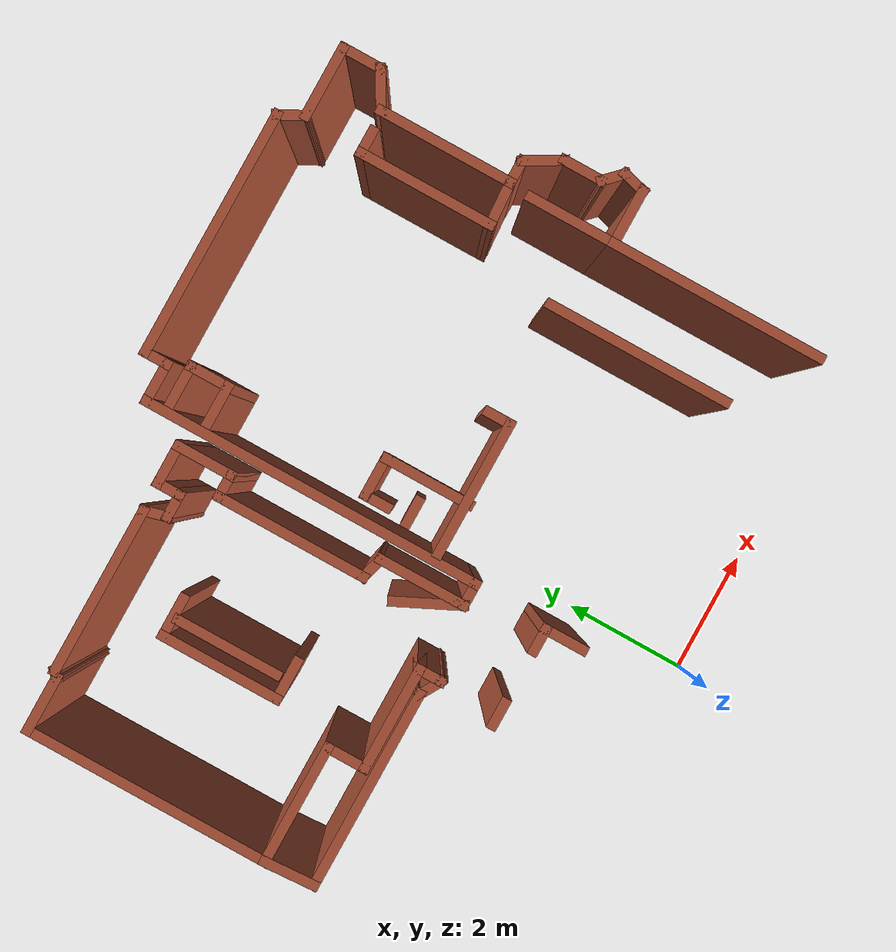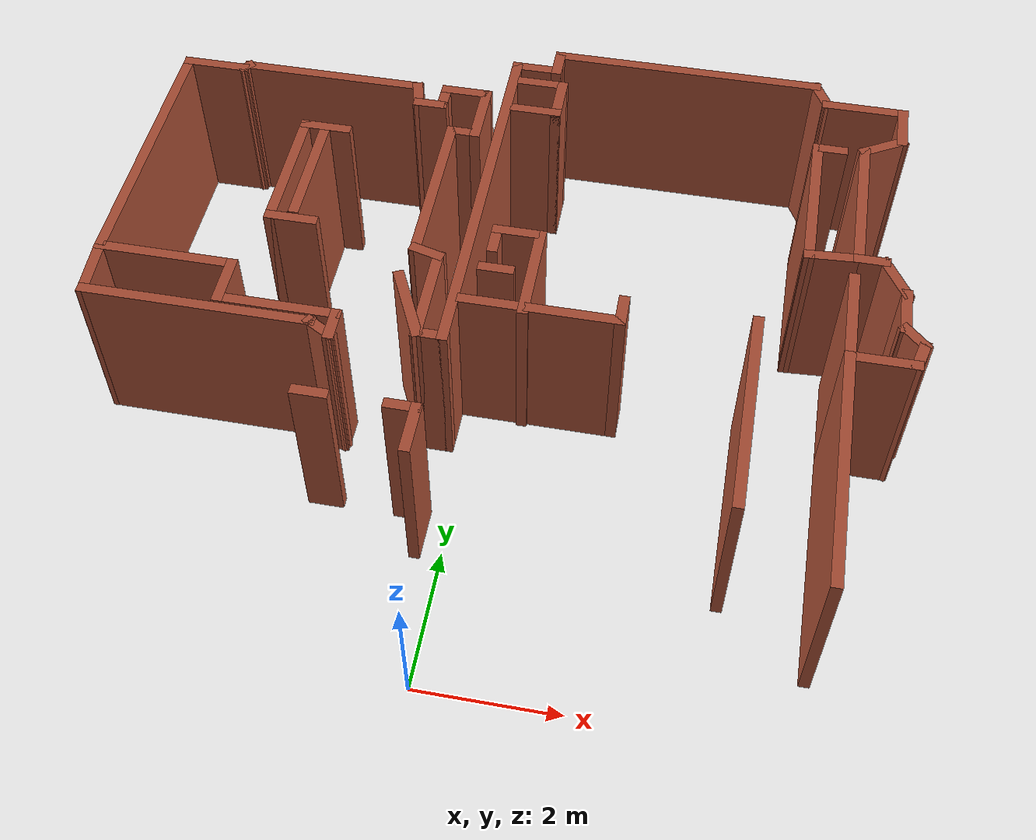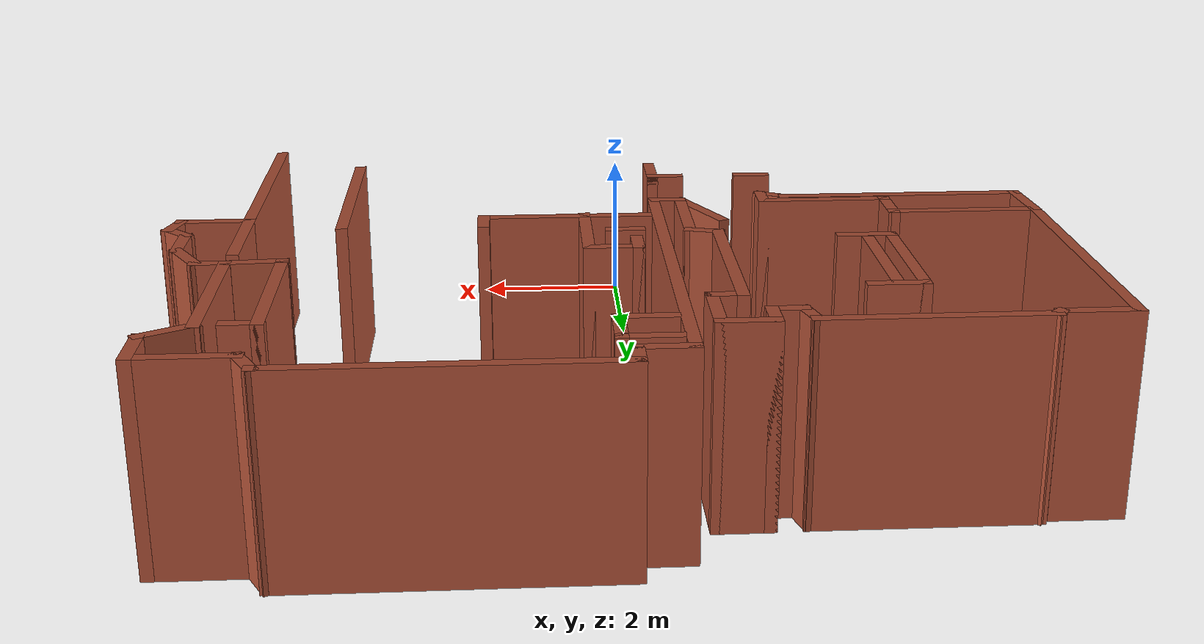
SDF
<sdf version="1.6">
 <model name="map_19">
  <pose>0.347283 1.65481 0 0 -0 0</pose>
  <link name="Wall_0">
   <collision name="Wall_0_Collision">
    <geometry><box><size>4 0.15 2.5</size></box></geometry>
    <pose>0 0 1.25 0 -0 0</pose>
   </collision>
   <visual name="Wall_0_Visual">
    <pose>0 0 1.25 0 -0 0</pose>
    <geometry><box><size>4 0.15 2.5</size></box></geometry>
    <material>
     <script><uri>file://media/materials/scripts/gazebo.material</uri><name>Gazebo/Bricks</name></script>
     <ambient>1 1 1 1</ambient>
    </material>
    <meta><layer>0</layer></meta>
   </visual>
   <pose>1.90327 7.78441 0 0 -0 3.14159</pose>
  </link>
  <link name="Wall_1">
   <collision name="Wall_1_Collision">
    <geometry><box><size>0.5 0.15 2.5</size></box></geometry>
    <pose>0 0 1.25 0 -0 0</pose>
   </collision>
   <visual name="Wall_1_Visual">
    <pose>0 0 1.25 0 -0 0</pose>
    <geometry><box><size>0.5 0.15 2.5</size></box></geometry>
    <material>
     <script><uri>file://media/materials/scripts/gazebo.material</uri><name>Gazebo/Bricks</name></script>
     <ambient>1 1 1 1</ambient>
    </material>
    <meta><layer>0</layer></meta>
   </visual>
   <pose>-0.021727 7.60941 0 0 -0 -1.5708</pose>
  </link>
  <link name="Wall_11">
   <collision name="Wall_11_Collision">
    <geometry><box><size>1 0.15 2.5</size></box></geometry>
    <pose>0 0 1.25 0 -0 0</pose>
   </collision>
   <visual name="Wall_11_Visual">
    <pose>0 0 1.25 0 -0 0</pose>
    <geometry><box><size>1 0.15 2.5</size></box></geometry>
    <material>
     <script><uri>file://media/materials/scripts/gazebo.material</uri><name>Gazebo/Bricks</name></script>
     <ambient>1 1 1 1</ambient>
    </material>
    <meta><layer>0</layer></meta>
   </visual>
   <pose>-0.959801 6.29999 0 0 -0 1.5708</pose>
  </link>
  <link name="Wall_12">
   <collision name="Wall_12_Collision">
    <geometry><box><size>0.75 0.15 2.5</size></box></geometry>
    <pose>0 0 1.25 0 -0 0</pose>
   </collision>
   <visual name="Wall_12_Visual">
    <pose>0 0 1.25 0 -0 0</pose>
    <geometry><box><size>0.75 0.15 2.5</size></box></geometry>
    <material>
     <script><uri>file://media/materials/scripts/gazebo.material</uri><name>Gazebo/Bricks</name></script>
     <ambient>1 1 1 1</ambient>
    </material>
    <meta><layer>0</layer></meta>
   </visual>
   <pose>-1.2598 6.72499 0 0 -0 3.14159</pose>
  </link>
  <link name="Wall_126">
   <collision name="Wall_126_Collision">
    <geometry><box><size>3.5 0.15 2.5</size></box></geometry>
    <pose>0 0 1.25 0 -0 0</pose>
   </collision>
   <visual name="Wall_126_Visual">
    <pose>0 0 1.25 0 -0 0</pose>
    <geometry><box><size>3.5 0.15 2.5</size></box></geometry>
    <material>
     <script><uri>file://media/materials/scripts/gazebo.material</uri><name>Gazebo/Bricks</name></script>
     <ambient>1 1 1 1</ambient>
    </material>
    <meta><layer>0</layer></meta>
   </visual>
   <pose>4.55384 1.03863 0 0 -0 1.5708</pose>
  </link>
  <link name="Wall_127">
   <collision name="Wall_127_Collision">
    <geometry><box><size>1 0.15 2.5</size></box></geometry>
    <pose>0 0 1.25 0 -0 0</pose>
   </collision>
   <visual name="Wall_127_Visual">
    <pose>0 0 1.25 0 -0 0</pose>
    <geometry><box><size>1 0.15 2.5</size></box></geometry>
    <material>
     <script><uri>file://media/materials/scripts/gazebo.material</uri><name>Gazebo/Bricks</name></script>
     <ambient>1 1 1 1</ambient>
    </material>
    <meta><layer>0</layer></meta>
   </visual>
   <pose>4.97884 2.71363 0 0 -0 0</pose>
  </link>
  <link name="Wall_128">
   <collision name="Wall_128_Collision">
    <geometry><box><size>0.5 0.15 2.5</size></box></geometry>
    <pose>0 0 1.25 0 -0 0</pose>
   </collision>
   <visual name="Wall_128_Visual">
    <pose>0 0 1.25 0 -0 0</pose>
    <geometry><box><size>0.5 0.15 2.5</size></box></geometry>
    <material>
     <script><uri>file://media/materials/scripts/gazebo.material</uri><name>Gazebo/Bricks</name></script>
     <ambient>1 1 1 1</ambient>
    </material>
    <meta><layer>0</layer></meta>
   </visual>
   <pose>5.44913 2.88267 0 0 -0 1.309</pose>
  </link>
  <link name="Wall_129">
   <collision name="Wall_129_Collision">
    <geometry><box><size>0.5 0.15 2.5</size></box></geometry>
    <pose>0 0 1.25 0 -0 0</pose>
   </collision>
   <visual name="Wall_129_Visual">
    <pose>0 0 1.25 0 -0 0</pose>
    <geometry><box><size>0.5 0.15 2.5</size></box></geometry>
    <material>
     <script><uri>file://media/materials/scripts/gazebo.material</uri><name>Gazebo/Bricks</name></script>
     <ambient>1 1 1 1</ambient>
    </material>
    <meta><layer>0</layer></meta>
   </visual>
   <pose>5.37068 3.17545 0 0 -0 2.35619</pose>
  </link>
  <link name="Wall_13">
   <collision name="Wall_13_Collision">
    <geometry><box><size>0.5 0.15 2.5</size></box></geometry>
    <pose>0 0 1.25 0 -0 0</pose>
   </collision>
   <visual name="Wall_13_Visual">
    <pose>0 0 1.25 0 -0 0</pose>
    <geometry><box><size>0.5 0.15 2.5</size></box></geometry>
    <material>
     <script><uri>file://media/materials/scripts/gazebo.material</uri><name>Gazebo/Bricks</name></script>
     <ambient>1 1 1 1</ambient>
    </material>
    <meta><layer>0</layer></meta>
   </visual>
   <pose>-1.5598 6.54999 0 0 -0 -1.5708</pose>
  </link>
  <link name="Wall_130">
   <collision name="Wall_130_Collision">
    <geometry><box><size>0.75 0.15 2.5</size></box></geometry>
    <pose>0 0 1.25 0 -0 0</pose>
   </collision>
   <visual name="Wall_130_Visual">
    <pose>0 0 1.25 0 -0 0</pose>
    <geometry><box><size>0.75 0.15 2.5</size></box></geometry>
    <material>
     <script><uri>file://media/materials/scripts/gazebo.material</uri><name>Gazebo/Bricks</name></script>
     <ambient>1 1 1 1</ambient>
    </material>
    <meta><layer>0</layer></meta>
   </visual>
   <pose>5.24694 3.59919 0 0 -0 1.5708</pose>
  </link>
  <link name="Wall_131">
   <collision name="Wall_131_Collision">
    <geometry><box><size>0.75 0.15 2.5</size></box></geometry>
    <pose>0 0 1.25 0 -0 0</pose>
   </collision>
   <visual name="Wall_131_Visual">
    <pose>0 0 1.25 0 -0 0</pose>
    <geometry><box><size>0.75 0.15 2.5</size></box></geometry>
    <material>
     <script><uri>file://media/materials/scripts/gazebo.material</uri><name>Gazebo/Bricks</name></script>
     <ambient>1 1 1 1</ambient>
    </material>
    <meta><layer>0</layer></meta>
   </visual>
   <pose>5.09694 4.159 0 0 -0 2.0944</pose>
  </link>
  <link name="Wall_132">
   <collision name="Wall_132_Collision">
    <geometry><box><size>0.5 0.15 2.5</size></box></geometry>
    <pose>0 0 1.25 0 -0 0</pose>
   </collision>
   <visual name="Wall_132_Visual">
    <pose>0 0 1.25 0 -0 0</pose>
    <geometry><box><size>0.5 0.15 2.5</size></box></geometry>
    <material>
     <script><uri>file://media/materials/scripts/gazebo.material</uri><name>Gazebo/Bricks</name></script>
     <ambient>1 1 1 1</ambient>
    </material>
    <meta><layer>0</layer></meta>
   </visual>
   <pose>4.77194 4.41881 0 0 -0 3.14159</pose>
  </link>
  <link name="Wall_133">
   <collision name="Wall_133_Collision">
    <geometry><box><size>2.25 0.15 2.5</size></box></geometry>
    <pose>0 0 1.25 0 -0 0</pose>
   </collision>
   <visual name="Wall_133_Visual">
    <pose>0 0 1.25 0 -0 0</pose>
    <geometry><box><size>2.25 0.15 2.5</size></box></geometry>
    <material>
     <script><uri>file://media/materials/scripts/gazebo.material</uri><name>Gazebo/Bricks</name></script>
     <ambient>1 1 1 1</ambient>
    </material>
    <meta><layer>0</layer></meta>
   </visual>
   <pose>4.59694 5.46881 0 0 -0 1.5708</pose>
  </link>
  <link name="Wall_134">
   <collision name="Wall_134_Collision">
    <geometry><box><size>0.75 0.15 2.5</size></box></geometry>
    <pose>0 0 1.25 0 -0 0</pose>
   </collision>
   <visual name="Wall_134_Visual">
    <pose>0 0 1.25 0 -0 0</pose>
    <geometry><box><size>0.75 0.15 2.5</size></box></geometry>
    <material>
     <script><uri>file://media/materials/scripts/gazebo.material</uri><name>Gazebo/Bricks</name></script>
     <ambient>1 1 1 1</ambient>
    </material>
    <meta><layer>0</layer></meta>
   </visual>
   <pose>4.85675 6.66881 0 0 -0 0.523599</pose>
  </link>
  <link name="Wall_135">
   <collision name="Wall_135_Collision">
    <geometry><box><size>0.75 0.15 2.5</size></box></geometry>
    <pose>0 0 1.25 0 -0 0</pose>
   </collision>
   <visual name="Wall_135_Visual">
    <pose>0 0 1.25 0 -0 0</pose>
    <geometry><box><size>0.75 0.15 2.5</size></box></geometry>
    <material>
     <script><uri>file://media/materials/scripts/gazebo.material</uri><name>Gazebo/Bricks</name></script>
     <ambient>1 1 1 1</ambient>
    </material>
    <meta><layer>0</layer></meta>
   </visual>
   <pose>5.11655 7.11881 0 0 -0 1.5708</pose>
  </link>
  <link name="Wall_136">
   <collision name="Wall_136_Collision">
    <geometry><box><size>1.25 0.15 2.5</size></box></geometry>
    <pose>0 0 1.25 0 -0 0</pose>
   </collision>
   <visual name="Wall_136_Visual">
    <pose>0 0 1.25 0 -0 0</pose>
    <geometry><box><size>1.25 0.15 2.5</size></box></geometry>
    <material>
     <script><uri>file://media/materials/scripts/gazebo.material</uri><name>Gazebo/Bricks</name></script>
     <ambient>1 1 1 1</ambient>
    </material>
    <meta><layer>0</layer></meta>
   </visual>
   <pose>4.56655 7.41881 0 0 -0 3.14159</pose>
  </link>
  <link name="Wall_137">
   <collision name="Wall_137_Collision">
    <geometry><box><size>0.561232 0.15 2.5</size></box></geometry>
    <pose>0 0 1.25 0 -0 0</pose>
   </collision>
   <visual name="Wall_137_Visual">
    <pose>0 0 1.25 0 -0 0</pose>
    <geometry><box><size>0.561232 0.15 2.5</size></box></geometry>
    <material>
     <script><uri>file://media/materials/scripts/gazebo.material</uri><name>Gazebo/Bricks</name></script>
     <ambient>1 1 1 1</ambient>
    </material>
    <meta><layer>0</layer></meta>
   </visual>
   <pose>3.92241 7.60161 0 0 -0 2.04636</pose>
  </link>
  <link name="Wall_139">
   <collision name="Wall_139_Collision">
    <geometry><box><size>0.5 0.15 2.5</size></box></geometry>
    <pose>0 0 1.25 0 -0 0</pose>
   </collision>
   <visual name="Wall_139_Visual">
    <pose>0 0 1.25 0 -0 0</pose>
    <geometry><box><size>0.5 0.15 2.5</size></box></geometry>
    <material>
     <script><uri>file://media/materials/scripts/gazebo.material</uri><name>Gazebo/Bricks</name></script>
     <ambient>1 1 1 1</ambient>
    </material>
    <meta><layer>0</layer></meta>
   </visual>
   <pose>4.10877 6.47784 0 0 -0 3.14159</pose>
  </link>
  <link name="Wall_14">
   <collision name="Wall_14_Collision">
    <geometry><box><size>0.5 0.15 2.5</size></box></geometry>
    <pose>0 0 1.25 0 -0 0</pose>
   </collision>
   <visual name="Wall_14_Visual">
    <pose>0 0 1.25 0 -0 0</pose>
    <geometry><box><size>0.5 0.15 2.5</size></box></geometry>
    <material>
     <script><uri>file://media/materials/scripts/gazebo.material</uri><name>Gazebo/Bricks</name></script>
     <ambient>1 1 1 1</ambient>
    </material>
    <meta><layer>0</layer></meta>
   </visual>
   <pose>-1.7348 6.37499 0 0 -0 3.14159</pose>
  </link>
  <link name="Wall_140">
   <collision name="Wall_140_Collision">
    <geometry><box><size>2.25 0.15 2.5</size></box></geometry>
    <pose>0 0 1.25 0 -0 0</pose>
   </collision>
   <visual name="Wall_140_Visual">
    <pose>0 0 1.25 0 -0 0</pose>
    <geometry><box><size>2.25 0.15 2.5</size></box></geometry>
    <material>
     <script><uri>file://media/materials/scripts/gazebo.material</uri><name>Gazebo/Bricks</name></script>
     <ambient>1 1 1 1</ambient>
    </material>
    <meta><layer>0</layer></meta>
   </visual>
   <pose>3.93377 5.42784 0 0 -0 -1.5708</pose>
  </link>
  <link name="Wall_141">
   <collision name="Wall_141_Collision">
    <geometry><box><size>0.814436 0.15 2.5</size></box></geometry>
    <pose>0 0 1.25 0 -0 0</pose>
   </collision>
   <visual name="Wall_141_Visual">
    <pose>0 0 1.25 0 -0 0</pose>
    <geometry><box><size>0.814436 0.15 2.5</size></box></geometry>
    <material>
     <script><uri>file://media/materials/scripts/gazebo.material</uri><name>Gazebo/Bricks</name></script>
     <ambient>1 1 1 1</ambient>
    </material>
    <meta><layer>0</layer></meta>
   </visual>
   <pose>4.26535 4.39832 0 0 -0 0.061703</pose>
  </link>
  <link name="Wall_143">
   <collision name="Wall_143_Collision">
    <geometry><box><size>2 0.15 2.5</size></box></geometry>
    <pose>0 0 1.25 0 -0 0</pose>
   </collision>
   <visual name="Wall_143_Visual">
    <pose>0 0 1.25 0 -0 0</pose>
    <geometry><box><size>2 0.15 2.5</size></box></geometry>
    <material>
     <script><uri>file://media/materials/scripts/gazebo.material</uri><name>Gazebo/Bricks</name></script>
     <ambient>1 1 1 1</ambient>
    </material>
    <meta><layer>0</layer></meta>
   </visual>
   <pose>-3.41973 4.68795 0 0 -0 -1.5708</pose>
  </link>
  <link name="Wall_144">
   <collision name="Wall_144_Collision">
    <geometry><box><size>0.75 0.15 2.5</size></box></geometry>
    <pose>0 0 1.25 0 -0 0</pose>
   </collision>
   <visual name="Wall_144_Visual">
    <pose>0 0 1.25 0 -0 0</pose>
    <geometry><box><size>0.75 0.15 2.5</size></box></geometry>
    <material>
     <script><uri>file://media/materials/scripts/gazebo.material</uri><name>Gazebo/Bricks</name></script>
     <ambient>1 1 1 1</ambient>
    </material>
    <meta><layer>0</layer></meta>
   </visual>
   <pose>-3.11973 3.76295 0 0 -0 0</pose>
  </link>
  <link name="Wall_148">
   <collision name="Wall_148_Collision">
    <geometry><box><size>0.75 0.15 2.5</size></box></geometry>
    <pose>0 0 1.25 0 -0 0</pose>
   </collision>
   <visual name="Wall_148_Visual">
    <pose>0 0 1.25 0 -0 0</pose>
    <geometry><box><size>0.75 0.15 2.5</size></box></geometry>
    <material>
     <script><uri>file://media/materials/scripts/gazebo.material</uri><name>Gazebo/Bricks</name></script>
     <ambient>1 1 1 1</ambient>
    </material>
    <meta><layer>0</layer></meta>
   </visual>
   <pose>-3.11973 5.61295 0 0 -0 0</pose>
  </link>
  <link name="Wall_15">
   <collision name="Wall_15_Collision">
    <geometry><box><size>0.5 0.15 2.5</size></box></geometry>
    <pose>0 0 1.25 0 -0 0</pose>
   </collision>
   <visual name="Wall_15_Visual">
    <pose>0 0 1.25 0 -0 0</pose>
    <geometry><box><size>0.5 0.15 2.5</size></box></geometry>
    <material>
     <script><uri>file://media/materials/scripts/gazebo.material</uri><name>Gazebo/Bricks</name></script>
     <ambient>1 1 1 1</ambient>
    </material>
    <meta><layer>0</layer></meta>
   </visual>
   <pose>-1.95509 6.54403 0 0 -0 1.8326</pose>
  </link>
  <link name="Wall_150">
   <collision name="Wall_150_Collision">
    <geometry><box><size>1.75 0.15 2.5</size></box></geometry>
    <pose>0 0 1.25 0 -0 0</pose>
   </collision>
   <visual name="Wall_150_Visual">
    <pose>0 0 1.25 0 -0 0</pose>
    <geometry><box><size>1.75 0.15 2.5</size></box></geometry>
    <material>
     <script><uri>file://media/materials/scripts/gazebo.material</uri><name>Gazebo/Bricks</name></script>
     <ambient>1 1 1 1</ambient>
    </material>
    <meta><layer>0</layer></meta>
   </visual>
   <pose>-3.11803 4.7325 0 0 -0 -1.5708</pose>
  </link>
  <link name="Wall_152">
   <collision name="Wall_152_Collision">
    <geometry><box><size>2.25 0.15 2.5</size></box></geometry>
    <pose>0 0 1.25 0 -0 0</pose>
   </collision>
   <visual name="Wall_152_Visual">
    <pose>0 0 1.25 0 -0 0</pose>
    <geometry><box><size>2.25 0.15 2.5</size></box></geometry>
    <material>
     <script><uri>file://media/materials/scripts/gazebo.material</uri><name>Gazebo/Bricks</name></script>
     <ambient>1 1 1 1</ambient>
    </material>
    <meta><layer>0</layer></meta>
   </visual>
   <pose>0.546736 2.75683 0 0 -0 0</pose>
  </link>
  <link name="Wall_153">
   <collision name="Wall_153_Collision">
    <geometry><box><size>0.5 0.15 2.5</size></box></geometry>
    <pose>0 0 1.25 0 -0 0</pose>
   </collision>
   <visual name="Wall_153_Visual">
    <pose>0 0 1.25 0 -0 0</pose>
    <geometry><box><size>0.5 0.15 2.5</size></box></geometry>
    <material>
     <script><uri>file://media/materials/scripts/gazebo.material</uri><name>Gazebo/Bricks</name></script>
     <ambient>1 1 1 1</ambient>
    </material>
    <meta><layer>0</layer></meta>
   </visual>
   <pose>1.59674 2.93182 0 0 -0 1.5708</pose>
  </link>
  <link name="Wall_155">
   <collision name="Wall_155_Collision">
    <geometry><box><size>0.75 0.15 2.5</size></box></geometry>
    <pose>0 0 1.25 0 -0 0</pose>
   </collision>
   <visual name="Wall_155_Visual">
    <pose>0 0 1.25 0 -0 0</pose>
    <geometry><box><size>0.75 0.15 2.5</size></box></geometry>
    <material>
     <script><uri>file://media/materials/scripts/gazebo.material</uri><name>Gazebo/Bricks</name></script>
     <ambient>1 1 1 1</ambient>
    </material>
    <meta><layer>0</layer></meta>
   </visual>
   <pose>0.017985 4.06421 0 0 -0 0</pose>
  </link>
  <link name="Wall_156">
   <collision name="Wall_156_Collision">
    <geometry><box><size>1.5 0.15 2.5</size></box></geometry>
    <pose>0 0 1.25 0 -0 0</pose>
   </collision>
   <visual name="Wall_156_Visual">
    <pose>0 0 1.25 0 -0 0</pose>
    <geometry><box><size>1.5 0.15 2.5</size></box></geometry>
    <material>
     <script><uri>file://media/materials/scripts/gazebo.material</uri><name>Gazebo/Bricks</name></script>
     <ambient>1 1 1 1</ambient>
    </material>
    <meta><layer>0</layer></meta>
   </visual>
   <pose>0.317985 3.38921 0 0 -0 -1.5708</pose>
  </link>
  <link name="Wall_158">
   <collision name="Wall_158_Collision">
    <geometry><box><size>0.5 0.15 2.5</size></box></geometry>
    <pose>0 0 1.25 0 -0 0</pose>
   </collision>
   <visual name="Wall_158_Visual">
    <pose>0 0 1.25 0 -0 0</pose>
    <geometry><box><size>0.5 0.15 2.5</size></box></geometry>
    <material>
     <script><uri>file://media/materials/scripts/gazebo.material</uri><name>Gazebo/Bricks</name></script>
     <ambient>1 1 1 1</ambient>
    </material>
    <meta><layer>0</layer></meta>
   </visual>
   <pose>-0.282015 3.88921 0 0 -0 -1.5708</pose>
  </link>
  <link name="Wall_16">
   <collision name="Wall_16_Collision">
    <geometry><box><size>2.75 0.15 2.5</size></box></geometry>
    <pose>0 0 1.25 0 -0 0</pose>
   </collision>
   <visual name="Wall_16_Visual">
    <pose>0 0 1.25 0 -0 0</pose>
    <geometry><box><size>2.75 0.15 2.5</size></box></geometry>
    <material>
     <script><uri>file://media/materials/scripts/gazebo.material</uri><name>Gazebo/Bricks</name></script>
     <ambient>1 1 1 1</ambient>
    </material>
    <meta><layer>0</layer></meta>
   </visual>
   <pose>-3.30039 6.71307 0 0 -0 3.14159</pose>
  </link>
  <link name="Wall_160">
   <collision name="Wall_160_Collision">
    <geometry><box><size>0.5 0.15 2.5</size></box></geometry>
    <pose>0 0 1.25 0 -0 0</pose>
   </collision>
   <visual name="Wall_160_Visual">
    <pose>0 0 1.25 0 -0 0</pose>
    <geometry><box><size>0.5 0.15 2.5</size></box></geometry>
    <material>
     <script><uri>file://media/materials/scripts/gazebo.material</uri><name>Gazebo/Bricks</name></script>
     <ambient>1 1 1 1</ambient>
    </material>
    <meta><layer>0</layer></meta>
   </visual>
   <pose>-0.167356 3.36023 0 0 -0 0</pose>
  </link>
  <link name="Wall_165">
   <collision name="Wall_165_Collision">
    <geometry><box><size>0.75 0.15 2.5</size></box></geometry>
    <pose>0 0 1.25 0 -0 0</pose>
   </collision>
   <visual name="Wall_165_Visual">
    <pose>0 0 1.25 0 -0 0</pose>
    <geometry><box><size>0.75 0.15 2.5</size></box></geometry>
    <material>
     <script><uri>file://media/materials/scripts/gazebo.material</uri><name>Gazebo/Bricks</name></script>
     <ambient>1 1 1 1</ambient>
    </material>
    <meta><layer>0</layer></meta>
   </visual>
   <pose>-0.183151 6.51806 0 0 -0 0</pose>
  </link>
  <link name="Wall_166">
   <collision name="Wall_166_Collision">
    <geometry><box><size>0.75 0.15 2.5</size></box></geometry>
    <pose>0 0 1.25 0 -0 0</pose>
   </collision>
   <visual name="Wall_166_Visual">
    <pose>0 0 1.25 0 -0 0</pose>
    <geometry><box><size>0.75 0.15 2.5</size></box></geometry>
    <material>
     <script><uri>file://media/materials/scripts/gazebo.material</uri><name>Gazebo/Bricks</name></script>
     <ambient>1 1 1 1</ambient>
    </material>
    <meta><layer>0</layer></meta>
   </visual>
   <pose>0.116849 6.81806 0 0 -0 1.5708</pose>
  </link>
  <link name="Wall_167">
   <collision name="Wall_167_Collision">
    <geometry><box><size>0.75 0.15 2.5</size></box></geometry>
    <pose>0 0 1.25 0 -0 0</pose>
   </collision>
   <visual name="Wall_167_Visual">
    <pose>0 0 1.25 0 -0 0</pose>
    <geometry><box><size>0.75 0.15 2.5</size></box></geometry>
    <material>
     <script><uri>file://media/materials/scripts/gazebo.material</uri><name>Gazebo/Bricks</name></script>
     <ambient>1 1 1 1</ambient>
    </material>
    <meta><layer>0</layer></meta>
   </visual>
   <pose>-0.183151 7.11806 0 0 -0 3.14159</pose>
  </link>
  <link name="Wall_169">
   <collision name="Wall_169_Collision">
    <geometry><box><size>1.16275 0.15 2.5</size></box></geometry>
    <pose>0 0 1.25 0 -0 0</pose>
   </collision>
   <visual name="Wall_169_Visual">
    <pose>0 0 1.25 0 -0 0</pose>
    <geometry><box><size>1.16275 0.15 2.5</size></box></geometry>
    <material>
     <script><uri>file://media/materials/scripts/gazebo.material</uri><name>Gazebo/Bricks</name></script>
     <ambient>1 1 1 1</ambient>
    </material>
    <meta><layer>0</layer></meta>
   </visual>
   <pose>-1.19005 2.5413 0 0 -0 -1.12503</pose>
  </link>
  <link name="Wall_172">
   <collision name="Wall_172_Collision">
    <geometry><box><size>3 0.15 2.5</size></box></geometry>
    <pose>0 0 1.25 0 -0 0</pose>
   </collision>
   <visual name="Wall_172_Visual">
    <pose>0 0 1.25 0 -0 0</pose>
    <geometry><box><size>3 0.15 2.5</size></box></geometry>
    <material>
     <script><uri>file://media/materials/scripts/gazebo.material</uri><name>Gazebo/Bricks</name></script>
     <ambient>1 1 1 1</ambient>
    </material>
    <meta><layer>0</layer></meta>
   </visual>
   <pose>3.35854 1.65364 0 0 -0 -1.5708</pose>
  </link>
  <link name="Wall_174">
   <collision name="Wall_174_Collision">
    <geometry><box><size>1.5 0.15 2.5</size></box></geometry>
    <pose>0 0 1.25 0 -0 0</pose>
   </collision>
   <visual name="Wall_174_Visual">
    <pose>0 0 1.25 0 -0 0</pose>
    <geometry><box><size>1.5 0.15 2.5</size></box></geometry>
    <material>
     <script><uri>file://media/materials/scripts/gazebo.material</uri><name>Gazebo/Bricks</name></script>
     <ambient>1 1 1 1</ambient>
    </material>
    <meta><layer>0</layer></meta>
   </visual>
   <pose>4.55384 3.38863 0 0 -0 1.5708</pose>
  </link>
  <link name="Wall_187">
   <collision name="Wall_187_Collision">
    <geometry><box><size>0.926417 0.15 2.5</size></box></geometry>
    <pose>0 0 1.25 0 -0 0</pose>
   </collision>
   <visual name="Wall_187_Visual">
    <pose>0 0 1.25 0 -0 0</pose>
    <geometry><box><size>0.926417 0.15 2.5</size></box></geometry>
    <material>
     <script><uri>file://media/materials/scripts/gazebo.material</uri><name>Gazebo/Bricks</name></script>
     <ambient>1 1 1 1</ambient>
    </material>
    <meta><layer>0</layer></meta>
   </visual>
   <pose>-5.49765 2.40486 0 0 -0 1.63123</pose>
  </link>
  <link name="Wall_2">
   <collision name="Wall_2_Collision">
    <geometry><box><size>0.75 0.15 2.5</size></box></geometry>
    <pose>0 0 1.25 0 -0 0</pose>
   </collision>
   <visual name="Wall_2_Visual">
    <pose>0 0 1.25 0 -0 0</pose>
    <geometry><box><size>0.75 0.15 2.5</size></box></geometry>
    <material>
     <script><uri>file://media/materials/scripts/gazebo.material</uri><name>Gazebo/Bricks</name></script>
     <ambient>1 1 1 1</ambient>
    </material>
    <meta><layer>0</layer></meta>
   </visual>
   <pose>-0.321727 7.43441 0 0 -0 3.14159</pose>
  </link>
  <link name="Wall_22">
   <collision name="Wall_22_Collision">
    <geometry><box><size>0.25 0.15 2.5</size></box></geometry>
    <pose>0 0 1.25 0 -0 0</pose>
   </collision>
   <visual name="Wall_22_Visual">
    <pose>0 0 1.25 0 -0 0</pose>
    <geometry><box><size>0.25 0.15 2.5</size></box></geometry>
    <material>
     <script><uri>file://media/materials/scripts/gazebo.material</uri><name>Gazebo/Bricks</name></script>
     <ambient>1 1 1 1</ambient>
    </material>
    <meta><layer>0</layer></meta>
   </visual>
   <pose>-4.63574 6.67771 0 0 -0 -2.35619</pose>
  </link>
  <link name="Wall_23">
   <collision name="Wall_23_Collision">
    <geometry><box><size>1 0.15 2.5</size></box></geometry>
    <pose>0 0 1.25 0 -0 0</pose>
   </collision>
   <visual name="Wall_23_Visual">
    <pose>0 0 1.25 0 -0 0</pose>
    <geometry><box><size>1 0.15 2.5</size></box></geometry>
    <material>
     <script><uri>file://media/materials/scripts/gazebo.material</uri><name>Gazebo/Bricks</name></script>
     <ambient>1 1 1 1</ambient>
    </material>
    <meta><layer>0</layer></meta>
   </visual>
   <pose>-5.0961 6.64236 0 0 -0 3.14159</pose>
  </link>
  <link name="Wall_24">
   <collision name="Wall_24_Collision">
    <geometry><box><size>4 0.15 2.5</size></box></geometry>
    <pose>0 0 1.25 0 -0 0</pose>
   </collision>
   <visual name="Wall_24_Visual">
    <pose>0 0 1.25 0 -0 0</pose>
    <geometry><box><size>4 0.15 2.5</size></box></geometry>
    <material>
     <script><uri>file://media/materials/scripts/gazebo.material</uri><name>Gazebo/Bricks</name></script>
     <ambient>1 1 1 1</ambient>
    </material>
    <meta><layer>0</layer></meta>
   </visual>
   <pose>-5.5211 4.71736 0 0 -0 -1.5708</pose>
  </link>
  <link name="Wall_27">
   <collision name="Wall_27_Collision">
    <geometry><box><size>2 0.15 2.5</size></box></geometry>
    <pose>0 0 1.25 0 -0 0</pose>
   </collision>
   <visual name="Wall_27_Visual">
    <pose>0 0 1.25 0 -0 0</pose>
    <geometry><box><size>2 0.15 2.5</size></box></geometry>
    <material>
     <script><uri>file://media/materials/scripts/gazebo.material</uri><name>Gazebo/Bricks</name></script>
     <ambient>1 1 1 1</ambient>
    </material>
    <meta><layer>0</layer></meta>
   </visual>
   <pose>-4.5961 2.79236 0 0 -0 0</pose>
  </link>
  <link name="Wall_3">
   <collision name="Wall_3_Collision">
    <geometry><box><size>5.5 0.15 2.5</size></box></geometry>
    <pose>0 0 1.25 0 -0 0</pose>
   </collision>
   <visual name="Wall_3_Visual">
    <pose>0 0 1.25 0 -0 0</pose>
    <geometry><box><size>5.5 0.15 2.5</size></box></geometry>
    <material>
     <script><uri>file://media/materials/scripts/gazebo.material</uri><name>Gazebo/Bricks</name></script>
     <ambient>1 1 1 1</ambient>
    </material>
    <meta><layer>0</layer></meta>
   </visual>
   <pose>-0.621727 4.75941 0 0 -0 -1.5708</pose>
  </link>
  <link name="Wall_30">
   <collision name="Wall_30_Collision">
    <geometry><box><size>0.75 0.15 2.5</size></box></geometry>
    <pose>0 0 1.25 0 -0 0</pose>
   </collision>
   <visual name="Wall_30_Visual">
    <pose>0 0 1.25 0 -0 0</pose>
    <geometry><box><size>0.75 0.15 2.5</size></box></geometry>
    <material>
     <script><uri>file://media/materials/scripts/gazebo.material</uri><name>Gazebo/Bricks</name></script>
     <ambient>1 1 1 1</ambient>
    </material>
    <meta><layer>0</layer></meta>
   </visual>
   <pose>-3.6711 2.49236 0 0 -0 -1.5708</pose>
  </link>
  <link name="Wall_31">
   <collision name="Wall_31_Collision">
    <geometry><box><size>1.75 0.15 2.5</size></box></geometry>
    <pose>0 0 1.25 0 -0 0</pose>
   </collision>
   <visual name="Wall_31_Visual">
    <pose>0 0 1.25 0 -0 0</pose>
    <geometry><box><size>1.75 0.15 2.5</size></box></geometry>
    <material>
     <script><uri>file://media/materials/scripts/gazebo.material</uri><name>Gazebo/Bricks</name></script>
     <ambient>1 1 1 1</ambient>
    </material>
    <meta><layer>0</layer></meta>
   </visual>
   <pose>-2.8711 2.19236 0 0 -0 0</pose>
  </link>
  <link name="Wall_32">
   <collision name="Wall_32_Collision">
    <geometry><box><size>0.5 0.15 2.5</size></box></geometry>
    <pose>0 0 1.25 0 -0 0</pose>
   </collision>
   <visual name="Wall_32_Visual">
    <pose>0 0 1.25 0 -0 0</pose>
    <geometry><box><size>0.5 0.15 2.5</size></box></geometry>
    <material>
     <script><uri>file://media/materials/scripts/gazebo.material</uri><name>Gazebo/Bricks</name></script>
     <ambient>1 1 1 1</ambient>
    </material>
    <meta><layer>0</layer></meta>
   </visual>
   <pose>-2.0711 2.01736 0 0 -0 -1.5708</pose>
  </link>
  <link name="Wall_33">
   <collision name="Wall_33_Collision">
    <geometry><box><size>0.5 0.15 2.5</size></box></geometry>
    <pose>0 0 1.25 0 -0 0</pose>
   </collision>
   <visual name="Wall_33_Visual">
    <pose>0 0 1.25 0 -0 0</pose>
    <geometry><box><size>0.5 0.15 2.5</size></box></geometry>
    <material>
     <script><uri>file://media/materials/scripts/gazebo.material</uri><name>Gazebo/Bricks</name></script>
     <ambient>1 1 1 1</ambient>
    </material>
    <meta><layer>0</layer></meta>
   </visual>
   <pose>-2.22265 1.92986 0 0 -0 2.61799</pose>
  </link>
  <link name="Wall_34">
   <collision name="Wall_34_Collision">
    <geometry><box><size>3.25 0.15 2.5</size></box></geometry>
    <pose>0 0 1.25 0 -0 0</pose>
   </collision>
   <visual name="Wall_34_Visual">
    <pose>0 0 1.25 0 -0 0</pose>
    <geometry><box><size>3.25 0.15 2.5</size></box></geometry>
    <material>
     <script><uri>file://media/materials/scripts/gazebo.material</uri><name>Gazebo/Bricks</name></script>
     <ambient>1 1 1 1</ambient>
    </material>
    <meta><layer>0</layer></meta>
   </visual>
   <pose>-3.92421 2.01736 0 0 -0 3.14159</pose>
  </link>
  <link name="Wall_4">
   <collision name="Wall_4_Collision">
    <geometry><box><size>0.5 0.15 2.5</size></box></geometry>
    <pose>0 0 1.25 0 -0 0</pose>
   </collision>
   <visual name="Wall_4_Visual">
    <pose>0 0 1.25 0 -0 0</pose>
    <geometry><box><size>0.5 0.15 2.5</size></box></geometry>
    <material>
     <script><uri>file://media/materials/scripts/gazebo.material</uri><name>Gazebo/Bricks</name></script>
     <ambient>1 1 1 1</ambient>
    </material>
    <meta><layer>0</layer></meta>
   </visual>
   <pose>-0.796727 2.08441 0 0 -0 3.14159</pose>
  </link>
  <link name="Wall_5">
   <collision name="Wall_5_Collision">
    <geometry><box><size>1.5 0.15 2.5</size></box></geometry>
    <pose>0 0 1.25 0 -0 0</pose>
   </collision>
   <visual name="Wall_5_Visual">
    <pose>0 0 1.25 0 -0 0</pose>
    <geometry><box><size>1.5 0.15 2.5</size></box></geometry>
    <material>
     <script><uri>file://media/materials/scripts/gazebo.material</uri><name>Gazebo/Bricks</name></script>
     <ambient>1 1 1 1</ambient>
    </material>
    <meta><layer>0</layer></meta>
   </visual>
   <pose>-0.971727 2.75941 0 0 -0 1.5708</pose>
  </link>
  <link name="Wall_57">
   <collision name="Wall_57_Collision">
    <geometry><box><size>0.5 0.15 2.5</size></box></geometry>
    <pose>0 0 1.25 0 -0 0</pose>
   </collision>
   <visual name="Wall_57_Visual">
    <pose>0 0 1.25 0 -0 0</pose>
    <geometry><box><size>0.5 0.15 2.5</size></box></geometry>
    <material>
     <script><uri>file://media/materials/scripts/gazebo.material</uri><name>Gazebo/Bricks</name></script>
     <ambient>1 1 1 1</ambient>
    </material>
    <meta><layer>0</layer></meta>
   </visual>
   <pose>-2.07557 0.901042 0 0 -0 0</pose>
  </link>
  <link name="Wall_6">
   <collision name="Wall_6_Collision">
    <geometry><box><size>0.5 0.15 2.5</size></box></geometry>
    <pose>0 0 1.25 0 -0 0</pose>
   </collision>
   <visual name="Wall_6_Visual">
    <pose>0 0 1.25 0 -0 0</pose>
    <geometry><box><size>0.5 0.15 2.5</size></box></geometry>
    <material>
     <script><uri>file://media/materials/scripts/gazebo.material</uri><name>Gazebo/Bricks</name></script>
     <ambient>1 1 1 1</ambient>
    </material>
    <meta><layer>0</layer></meta>
   </visual>
   <pose>-1.14076 3.4797 0 0 -0 2.87979</pose>
  </link>
  <link name="Wall_64">
   <collision name="Wall_64_Collision">
    <geometry><box><size>0.5 0.15 2.5</size></box></geometry>
    <pose>0 0 1.25 0 -0 0</pose>
   </collision>
   <visual name="Wall_64_Visual">
    <pose>0 0 1.25 0 -0 0</pose>
    <geometry><box><size>0.5 0.15 2.5</size></box></geometry>
    <material>
     <script><uri>file://media/materials/scripts/gazebo.material</uri><name>Gazebo/Bricks</name></script>
     <ambient>1 1 1 1</ambient>
    </material>
    <meta><layer>0</layer></meta>
   </visual>
   <pose>-0.875572 0.901042 0 0 -0 0</pose>
  </link>
  <link name="Wall_65">
   <collision name="Wall_65_Collision">
    <geometry><box><size>0.75 0.15 2.5</size></box></geometry>
    <pose>0 0 1.25 0 -0 0</pose>
   </collision>
   <visual name="Wall_65_Visual">
    <pose>0 0 1.25 0 -0 0</pose>
    <geometry><box><size>0.75 0.15 2.5</size></box></geometry>
    <material>
     <script><uri>file://media/materials/scripts/gazebo.material</uri><name>Gazebo/Bricks</name></script>
     <ambient>1 1 1 1</ambient>
    </material>
    <meta><layer>0</layer></meta>
   </visual>
   <pose>-0.700572 0.601043 0 0 -0 -1.5708</pose>
  </link>
  <link name="Wall_7">
   <collision name="Wall_7_Collision">
    <geometry><box><size>2.5 0.15 2.5</size></box></geometry>
    <pose>0 0 1.25 0 -0 0</pose>
   </collision>
   <visual name="Wall_7_Visual">
    <pose>0 0 1.25 0 -0 0</pose>
    <geometry><box><size>2.5 0.15 2.5</size></box></geometry>
    <material>
     <script><uri>file://media/materials/scripts/gazebo.material</uri><name>Gazebo/Bricks</name></script>
     <ambient>1 1 1 1</ambient>
    </material>
    <meta><layer>0</layer></meta>
   </visual>
   <pose>-1.3098 4.69999 0 0 -0 1.5708</pose>
  </link>
  <link name="Wall_8">
   <collision name="Wall_8_Collision">
    <geometry><box><size>0.5 0.15 2.5</size></box></geometry>
    <pose>0 0 1.25 0 -0 0</pose>
   </collision>
   <visual name="Wall_8_Visual">
    <pose>0 0 1.25 0 -0 0</pose>
    <geometry><box><size>0.5 0.15 2.5</size></box></geometry>
    <material>
     <script><uri>file://media/materials/scripts/gazebo.material</uri><name>Gazebo/Bricks</name></script>
     <ambient>1 1 1 1</ambient>
    </material>
    <meta><layer>0</layer></meta>
   </visual>
   <pose>-1.1348 5.87499 0 0 -0 0</pose>
  </link>
  <static>1</static>
 </model>
</sdf>
